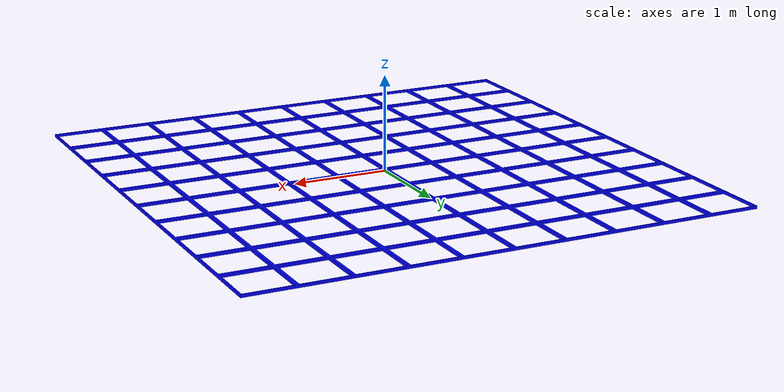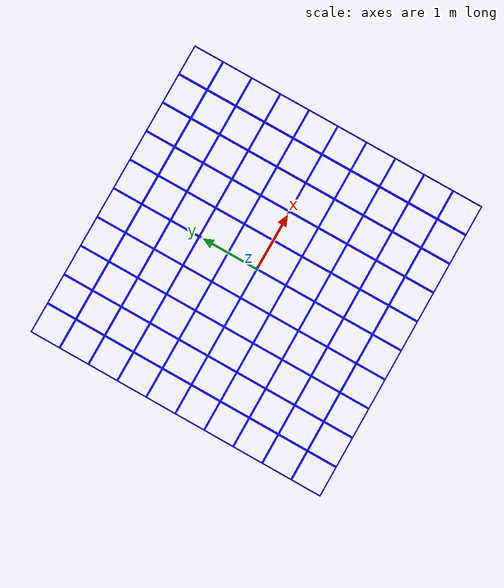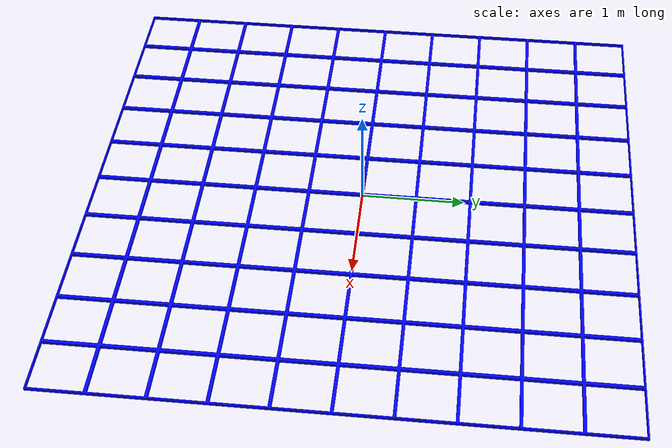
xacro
<?xml version="1.0" encoding="utf-8"?>
<robot name="legarm_robot_description" xmlns:xacro="http://www.ros.org/wiki/xacro">
<!--all model*******************************************************************************************-->
  <link
    name="truss_link">
    <inertial>
      <origin xyz="0 0 0" rpy="0 0 0" />
      <mass value="10000" />
      <inertia ixx="218" ixy="0" ixz="0" iyy="438" iyz="0" izz="219" />
    </inertial>
    <visual>
      <origin xyz="0 0 0" rpy="0 0 0" />
      <geometry> <mesh filename="package://robot_description/meshes/truss_link.STL" /> </geometry>
      <material name=""> <color rgba="0 0 1 1" /> </material>
    </visual>
    <collision>
      <origin xyz="0 0 0" rpy="0 0 0" />
      <geometry> <mesh filename="package://robot_description/meshes/truss_link.STL" /> </geometry>
    </collision>
  </link>

<!--gazebo*******************************************************************************************-->

</robot>
